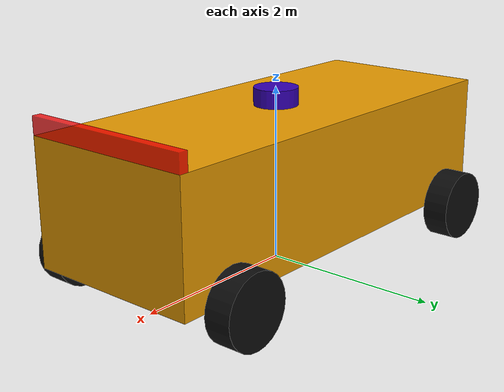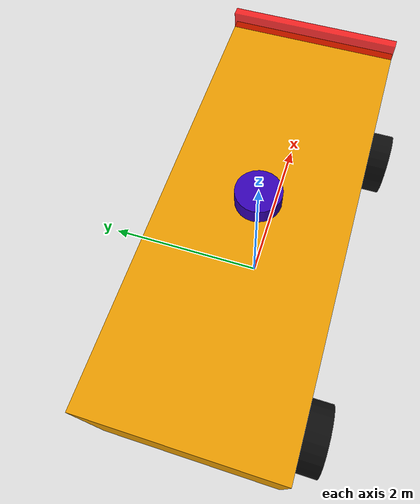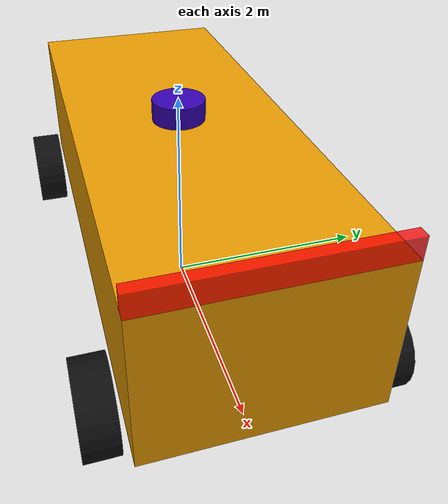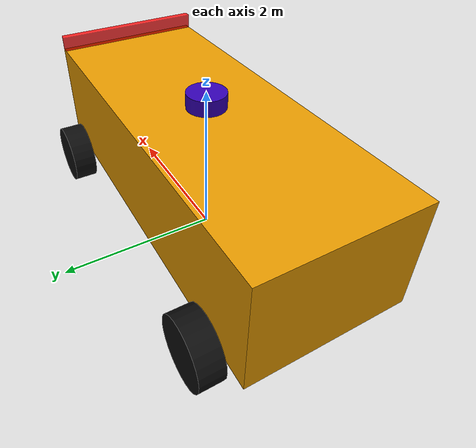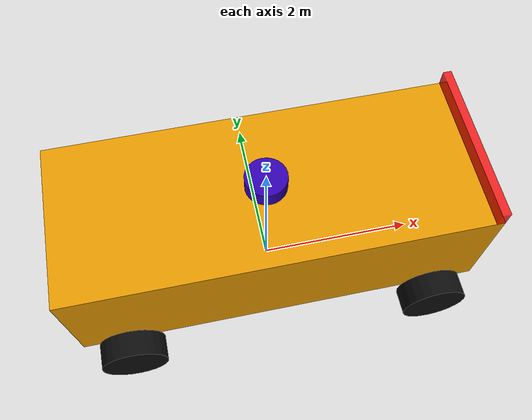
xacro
<!-- 整车 - ROS1 兼容版本 -->
<robot xmlns:xacro="http://www.ros.org/wiki/xacro" name="ego_car">
    <xacro:property name="PI" value="3.141592653"/>
    <xacro:include filename="$(find lane_change_sim)/urdf/main_car/car_base.xacro"/>
    <xacro:include filename="$(find lane_change_sim)/urdf/main_car/car_camera.xacro"/>
    <xacro:include filename="$(find lane_change_sim)/urdf/main_car/car_radar.xacro"/>
</robot>

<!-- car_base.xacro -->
<!-- 底盘 - ROS1 -->
<robot xmlns:xacro="http://www.ros.org/wiki/xacro">
    <xacro:property name="car_length" value="5.0"/>
    <xacro:property name="car_width"  value="2.0"/>
    <xacro:property name="car_height" value="1.4"/>
    <xacro:property name="ground_height" value="0.4"/>

    <xacro:include filename="$(find lane_change_sim)/urdf/main_car/car_wheels.xacro"/>

    <material name="yellow">
        <color rgba="0.9 0.6 0.0 0.9"/>
    </material>

    <!-- base_footprint is driven by TF (map -> base_footprint) from simulation_node -->
    <link name="base_footprint"/>
    <link name="base_link">
        <visual>
            <geometry>
                <box size="${car_length} ${car_width} ${car_height}"/>
            </geometry>
            <material name="yellow"/>
        </visual>
    </link>

    <joint name="base_to_footprint" type="fixed">
        <parent link="base_footprint"/>
        <child  link="base_link"/>
        <origin xyz="0.0 0.0 ${car_height / 2.0 + ground_height}"/>
    </joint>
</robot>

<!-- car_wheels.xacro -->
<!-- 车轮 - ROS1 -->
<robot xmlns:xacro="http://www.ros.org/wiki/xacro">
    <xacro:property name="wheel_radius" value="0.40"/>
    <xacro:property name="wheel_width"  value="0.30"/>
    <xacro:property name="wheel_joint_x" value="${car_length / 2.0 - 0.6}"/>
    <xacro:property name="wheel_joint_y" value="${car_width  / 2.0 + wheel_width / 2.0 + 0.05}"/>
    <xacro:property name="wheel_joint_z" value="${-car_height / 2.0 - ground_height + wheel_radius}"/>

    <material name="black">
        <color rgba="0.05 0.05 0.05 1.0"/>
    </material>

    <xacro:macro name="wheel_geometry" params="wheel_name">
        <link name="${wheel_name}">
            <visual>
                <geometry>
                    <cylinder radius="${wheel_radius}" length="${wheel_width}"/>
                </geometry>
                <origin rpy="${PI / 2.0} 0.0 0.0"/>
                <material name="black"/>
            </visual>
        </link>
    </xacro:macro>

    <xacro:macro name="wheel_rear_func" params="wheel_name left_flag">
        <xacro:wheel_geometry wheel_name="${wheel_name}"/>
        <joint name="${wheel_name}_rolling" type="continuous">
            <parent link="base_link"/>
            <child  link="${wheel_name}"/>
            <origin xyz="${-wheel_joint_x} ${wheel_joint_y * left_flag} ${wheel_joint_z}"/>
            <axis xyz="0 1 0"/>
        </joint>
    </xacro:macro>

    <xacro:macro name="wheel_front_func" params="wheel_name left_flag">
        <xacro:wheel_geometry wheel_name="${wheel_name}"/>
        <link name="${wheel_name}_steering_knuckle"/>
        <joint name="${wheel_name}_turning" type="revolute">
            <parent link="base_link"/>
            <child  link="${wheel_name}_steering_knuckle"/>
            <origin xyz="${wheel_joint_x} ${wheel_joint_y * left_flag} ${wheel_joint_z}"/>
            <axis xyz="0 0 1"/>
            <limit effort="0" velocity="0" lower="${-PI / 6.0}" upper="${PI / 6.0}"/>
        </joint>
        <joint name="${wheel_name}_rolling" type="continuous">
            <parent link="${wheel_name}_steering_knuckle"/>
            <child  link="${wheel_name}"/>
            <origin xyz="0 0 0"/>
            <axis xyz="0 1 0"/>
        </joint>
    </xacro:macro>

    <xacro:wheel_front_func wheel_name="left_front"  left_flag="1"/>
    <xacro:wheel_front_func wheel_name="right_front" left_flag="-1"/>
    <xacro:wheel_rear_func  wheel_name="left_rear"   left_flag="1"/>
    <xacro:wheel_rear_func  wheel_name="right_rear"  left_flag="-1"/>
</robot>

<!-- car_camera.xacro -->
<!-- 摄像头 - ROS1 -->
<robot xmlns:xacro="http://www.ros.org/wiki/xacro">
    <xacro:property name="camera_length" value="0.1"/>
    <xacro:property name="camera_width"  value="2.0"/>
    <xacro:property name="camera_height" value="0.2"/>
    <xacro:property name="camera_joint_x" value="${car_length / 2.0 - 0.05}"/>
    <xacro:property name="camera_joint_y" value="0.0"/>
    <xacro:property name="camera_joint_z" value="${car_height / 2.0 + camera_height / 2.0}"/>

    <material name="red">
        <color rgba="1.0 0.0 0.0 0.8"/>
    </material>

    <link name="camera">
        <visual>
            <geometry>
                <box size="${camera_length} ${camera_width} ${camera_height}"/>
            </geometry>
            <material name="red"/>
        </visual>
    </link>

    <joint name="camera2base_link" type="fixed">
        <parent link="base_link"/>
        <child  link="camera"/>
        <origin xyz="${camera_joint_x} ${camera_joint_y} ${camera_joint_z}"/>
    </joint>
</robot>

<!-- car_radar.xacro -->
<!-- 雷达 - ROS1 -->
<robot xmlns:xacro="http://www.ros.org/wiki/xacro">
    <xacro:property name="radar_radius" value="0.25"/>
    <xacro:property name="radar_height" value="0.20"/>
    <xacro:property name="radar_joint_x" value="0.0"/>
    <xacro:property name="radar_joint_y" value="0.0"/>
    <xacro:property name="radar_joint_z" value="${car_height / 2.0 + radar_height / 2.0}"/>

    <material name="blue">
        <color rgba="0.2 0.0 0.7 0.9"/>
    </material>

    <link name="radar">
        <visual>
            <geometry>
                <cylinder radius="${radar_radius}" length="${radar_height}"/>
            </geometry>
            <material name="blue"/>
        </visual>
    </link>

    <joint name="radar2base_link" type="fixed">
        <parent link="base_link"/>
        <child  link="radar"/>
        <origin xyz="${radar_joint_x} ${radar_joint_y} ${radar_joint_z}"/>
    </joint>
</robot>
